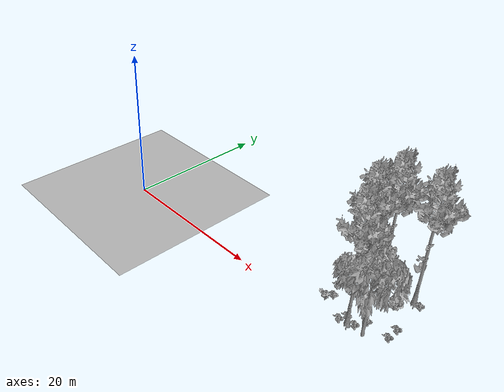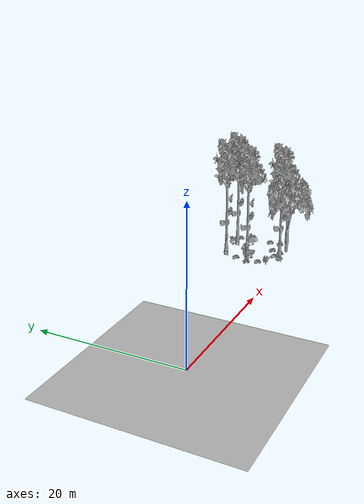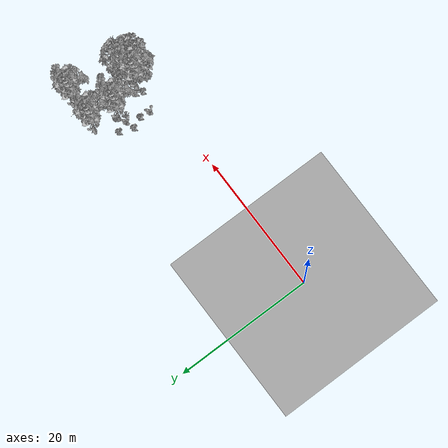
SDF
<sdf version="1.7">
 <world name="default">
  <model name="ground_plane">
   <static>1</static>
   <link name="link">
    <collision name="collision">
     <pose>-50 0 0 0 -0 0</pose>
     <geometry><plane><normal>0 0 1</normal><size>80 80</size></plane></geometry>
     <surface><contact><ode><min_depth>0.01</min_depth><max_vel>0</max_vel></ode></contact></surface>
    </collision>
    <visual name="grass">
     <cast_shadows>0</cast_shadows>
     <geometry>
      <mesh>
       <scale>0.46714285714285714 0.46714285714285714 0.1</scale>
       <uri>file://grass_plane/meshes/grass_plane.dae</uri>
      </mesh>
     </geometry>
    </visual>
   </link>
  </model>
  <model name="Tree 122">
   <static>1</static>
   <pose>37.59086470297966 9.819742597090581 0 1.57079 -0 0</pose>
   <link name="link">
    <collision name="collision">
     <geometry><mesh><scale>3.5 5 3.5</scale><uri>model://tree_9/meshes/tree_9.obj</uri></mesh></geometry>
    </collision>
    <visual name="visual">
     <geometry><mesh><scale>3.5 5 3.5</scale><uri>model://tree_9/meshes/tree_9.obj</uri></mesh></geometry>
    </visual>
   </link>
  </model>
  <model name="Tree 138">
   <static>1</static>
   <pose>36.671805194954416 1.4214039116416757 0 1.57079 -0 0</pose>
   <link name="link">
    <collision name="collision">
     <geometry><mesh><scale>3.5 5 3.5</scale><uri>model://tree_2/meshes/tree_2.obj</uri></mesh></geometry>
    </collision>
    <visual name="visual">
     <geometry><mesh><scale>3.5 5 3.5</scale><uri>model://tree_2/meshes/tree_2.obj</uri></mesh></geometry>
    </visual>
   </link>
  </model>
  <model name="Tree 171">
   <static>1</static>
   <pose>34.597990895937855 1.746844077641839 0 1.57079 -0 0</pose>
   <link name="link">
    <collision name="collision">
     <geometry><mesh><scale>3.5 5 3.5</scale><uri>model://tree_9/meshes/tree_9.obj</uri></mesh></geometry>
    </collision>
    <visual name="visual">
     <geometry><mesh><scale>3.5 5 3.5</scale><uri>model://tree_9/meshes/tree_9.obj</uri></mesh></geometry>
    </visual>
   </link>
  </model>
  <model name="Tree 557">
   <static>1</static>
   <pose>32.72562983116187 6.20864471874016 0 1.57079 -0 0</pose>
   <link name="link">
    <collision name="collision">
     <geometry><mesh><scale>3.5 5 3.5</scale><uri>model://tree_9/meshes/tree_9.obj</uri></mesh></geometry>
    </collision>
    <visual name="visual">
     <geometry><mesh><scale>3.5 5 3.5</scale><uri>model://tree_9/meshes/tree_9.obj</uri></mesh></geometry>
    </visual>
   </link>
  </model>
  <model name="Tree 620">
   <static>1</static>
   <pose>33.21496955077373 9.810432720175335 0 1.57079 -0 0</pose>
   <link name="link">
    <collision name="collision">
     <geometry><mesh><scale>3.5 5 3.5</scale><uri>model://tree_9/meshes/tree_9.obj</uri></mesh></geometry>
    </collision>
    <visual name="visual">
     <geometry><mesh><scale>3.5 5 3.5</scale><uri>model://tree_9/meshes/tree_9.obj</uri></mesh></geometry>
    </visual>
   </link>
  </model>
  <model name="Bush 4">
   <static>1</static>
   <pose>35.73355324787153 9.75985685220408 0 1.57079 -0 0</pose>
   <link name="link">
    <collision name="collision">
     <geometry><mesh><scale>2 2 2</scale><uri>model://bush_4/meshes/bush_4.obj</uri></mesh></geometry>
     <surface><contact><collide_without_contact>false</collide_without_contact></contact></surface>
    </collision>
    <visual name="visual">
     <geometry><mesh><scale>2 2 2</scale><uri>model://bush_4/meshes/bush_4.obj</uri></mesh></geometry>
    </visual>
   </link>
  </model>
  <model name="Bush 7">
   <static>1</static>
   <pose>38.73250769499832 3.113627795661877 0 1.57079 -0 0</pose>
   <link name="link">
    <collision name="collision">
     <geometry><mesh><scale>2 2 2</scale><uri>model://bush_2/meshes/bush_2.obj</uri></mesh></geometry>
     <surface><contact><collide_without_contact>false</collide_without_contact></contact></surface>
    </collision>
    <visual name="visual">
     <geometry><mesh><scale>2 2 2</scale><uri>model://bush_2/meshes/bush_2.obj</uri></mesh></geometry>
    </visual>
   </link>
  </model>
  <model name="Bush 19">
   <static>1</static>
   <pose>30.347158017667923 5.334154945781087 0 1.57079 -0 0</pose>
   <link name="link">
    <collision name="collision">
     <geometry><mesh><scale>2 2 2</scale><uri>model://bush_2/meshes/bush_2.obj</uri></mesh></geometry>
     <surface><contact><collide_without_contact>false</collide_without_contact></contact></surface>
    </collision>
    <visual name="visual">
     <geometry><mesh><scale>2 2 2</scale><uri>model://bush_2/meshes/bush_2.obj</uri></mesh></geometry>
    </visual>
   </link>
  </model>
  <model name="Bush 28">
   <static>1</static>
   <pose>36.80295578660407 6.903912059199072 0 1.57079 -0 0</pose>
   <link name="link">
    <collision name="collision">
     <geometry><mesh><scale>2 2 2</scale><uri>model://bush_1/meshes/bush_1.obj</uri></mesh></geometry>
     <surface><contact><collide_without_contact>false</collide_without_contact></contact></surface>
    </collision>
    <visual name="visual">
     <geometry><mesh><scale>2 2 2</scale><uri>model://bush_1/meshes/bush_1.obj</uri></mesh></geometry>
    </visual>
   </link>
  </model>
  <model name="Bush 141">
   <static>1</static>
   <pose>31.655901551580683 5.805349589896707 0 1.57079 -0 0</pose>
   <link name="link">
    <collision name="collision">
     <geometry><mesh><scale>2 2 2</scale><uri>model://bush_0/meshes/bush_0.obj</uri></mesh></geometry>
     <surface><contact><collide_without_contact>false</collide_without_contact></contact></surface>
    </collision>
    <visual name="visual">
     <geometry><mesh><scale>2 2 2</scale><uri>model://bush_0/meshes/bush_0.obj</uri></mesh></geometry>
    </visual>
   </link>
  </model>
  <model name="Bush 162">
   <static>1</static>
   <pose>36.191260288524276 7.660402823305468 0 1.57079 -0 0</pose>
   <link name="link">
    <collision name="collision">
     <geometry><mesh><scale>2 2 2</scale><uri>model://bush_2/meshes/bush_2.obj</uri></mesh></geometry>
     <surface><contact><collide_without_contact>false</collide_without_contact></contact></surface>
    </collision>
    <visual name="visual">
     <geometry><mesh><scale>2 2 2</scale><uri>model://bush_2/meshes/bush_2.obj</uri></mesh></geometry>
    </visual>
   </link>
  </model>
  <model name="Bush 197">
   <static>1</static>
   <pose>31.117608048323063 7.26817040647056 0 1.57079 -0 0</pose>
   <link name="link">
    <collision name="collision">
     <geometry><mesh><scale>2 2 2</scale><uri>model://bush_2/meshes/bush_2.obj</uri></mesh></geometry>
     <surface><contact><collide_without_contact>false</collide_without_contact></contact></surface>
    </collision>
    <visual name="visual">
     <geometry><mesh><scale>2 2 2</scale><uri>model://bush_2/meshes/bush_2.obj</uri></mesh></geometry>
    </visual>
   </link>
  </model>
  <model name="Bush 245">
   <static>1</static>
   <pose>31.016493981298737 3.7759293555054256 0 1.57079 -0 0</pose>
   <link name="link">
    <collision name="collision">
     <geometry><mesh><scale>2 2 2</scale><uri>model://bush_2/meshes/bush_2.obj</uri></mesh></geometry>
     <surface><contact><collide_without_contact>false</collide_without_contact></contact></surface>
    </collision>
    <visual name="visual">
     <geometry><mesh><scale>2 2 2</scale><uri>model://bush_2/meshes/bush_2.obj</uri></mesh></geometry>
    </visual>
   </link>
  </model>
  <model name="Bush 259">
   <static>1</static>
   <pose>38.38879427271911 9.497973253656056 0 1.57079 -0 0</pose>
   <link name="link">
    <collision name="collision">
     <geometry><mesh><scale>2 2 2</scale><uri>model://bush_2/meshes/bush_2.obj</uri></mesh></geometry>
     <surface><contact><collide_without_contact>false</collide_without_contact></contact></surface>
    </collision>
    <visual name="visual">
     <geometry><mesh><scale>2 2 2</scale><uri>model://bush_2/meshes/bush_2.obj</uri></mesh></geometry>
    </visual>
   </link>
  </model>
  <model name="Bush 273">
   <static>1</static>
   <pose>35.96219060990022 3.3155025468103503 0 1.57079 -0 0</pose>
   <link name="link">
    <collision name="collision">
     <geometry><mesh><scale>2 2 2</scale><uri>model://bush_2/meshes/bush_2.obj</uri></mesh></geometry>
     <surface><contact><collide_without_contact>false</collide_without_contact></contact></surface>
    </collision>
    <visual name="visual">
     <geometry><mesh><scale>2 2 2</scale><uri>model://bush_2/meshes/bush_2.obj</uri></mesh></geometry>
    </visual>
   </link>
  </model>
  <model name="Bush 346">
   <static>1</static>
   <pose>34.02852436272525 2.313863500257078 0 1.57079 -0 0</pose>
   <link name="link">
    <collision name="collision">
     <geometry><mesh><scale>2 2 2</scale><uri>model://bush_2/meshes/bush_2.obj</uri></mesh></geometry>
     <surface><contact><collide_without_contact>false</collide_without_contact></contact></surface>
    </collision>
    <visual name="visual">
     <geometry><mesh><scale>2 2 2</scale><uri>model://bush_2/meshes/bush_2.obj</uri></mesh></geometry>
    </visual>
   </link>
  </model>
  <model name="Bush 372">
   <static>1</static>
   <pose>30.887959585622482 2.466646344661825 0 1.57079 -0 0</pose>
   <link name="link">
    <collision name="collision">
     <geometry><mesh><scale>2 2 2</scale><uri>model://bush_0/meshes/bush_0.obj</uri></mesh></geometry>
     <surface><contact><collide_without_contact>false</collide_without_contact></contact></surface>
    </collision>
    <visual name="visual">
     <geometry><mesh><scale>2 2 2</scale><uri>model://bush_0/meshes/bush_0.obj</uri></mesh></geometry>
    </visual>
   </link>
  </model>
  <model name="Bush 461">
   <static>1</static>
   <pose>38.69352869386795 4.703174420527901 0 1.57079 -0 0</pose>
   <link name="link">
    <collision name="collision">
     <geometry><mesh><scale>2 2 2</scale><uri>model://bush_2/meshes/bush_2.obj</uri></mesh></geometry>
     <surface><contact><collide_without_contact>false</collide_without_contact></contact></surface>
    </collision>
    <visual name="visual">
     <geometry><mesh><scale>2 2 2</scale><uri>model://bush_2/meshes/bush_2.obj</uri></mesh></geometry>
    </visual>
   </link>
  </model>
  <model name="Bush 528">
   <static>1</static>
   <pose>35.34623297033791 1.9008520469943235 0 1.57079 -0 0</pose>
   <link name="link">
    <collision name="collision">
     <geometry><mesh><scale>2 2 2</scale><uri>model://bush_2/meshes/bush_2.obj</uri></mesh></geometry>
     <surface><contact><collide_without_contact>false</collide_without_contact></contact></surface>
    </collision>
    <visual name="visual">
     <geometry><mesh><scale>2 2 2</scale><uri>model://bush_2/meshes/bush_2.obj</uri></mesh></geometry>
    </visual>
   </link>
  </model>
  <model name="Bush 530">
   <static>1</static>
   <pose>33.65030373481771 1.400701967232962 0 1.57079 -0 0</pose>
   <link name="link">
    <collision name="collision">
     <geometry><mesh><scale>2 2 2</scale><uri>model://bush_2/meshes/bush_2.obj</uri></mesh></geometry>
     <surface><contact><collide_without_contact>false</collide_without_contact></contact></surface>
    </collision>
    <visual name="visual">
     <geometry><mesh><scale>2 2 2</scale><uri>model://bush_2/meshes/bush_2.obj</uri></mesh></geometry>
    </visual>
   </link>
  </model>
  <model name="Bush 539">
   <static>1</static>
   <pose>32.62824994320029 6.749277554537976 0 1.57079 -0 0</pose>
   <link name="link">
    <collision name="collision">
     <geometry><mesh><scale>2 2 2</scale><uri>model://bush_5/meshes/bush_5.obj</uri></mesh></geometry>
     <surface><contact><collide_without_contact>false</collide_without_contact></contact></surface>
    </collision>
    <visual name="visual">
     <geometry><mesh><scale>2 2 2</scale><uri>model://bush_5/meshes/bush_5.obj</uri></mesh></geometry>
    </visual>
   </link>
  </model>
  <model name="Bush 571">
   <static>1</static>
   <pose>32.196727855988726 5.2443430010581835 0 1.57079 -0 0</pose>
   <link name="link">
    <collision name="collision">
     <geometry><mesh><scale>2 2 2</scale><uri>model://bush_4/meshes/bush_4.obj</uri></mesh></geometry>
     <surface><contact><collide_without_contact>false</collide_without_contact></contact></surface>
    </collision>
    <visual name="visual">
     <geometry><mesh><scale>2 2 2</scale><uri>model://bush_4/meshes/bush_4.obj</uri></mesh></geometry>
    </visual>
   </link>
  </model>
 </world>
</sdf>
